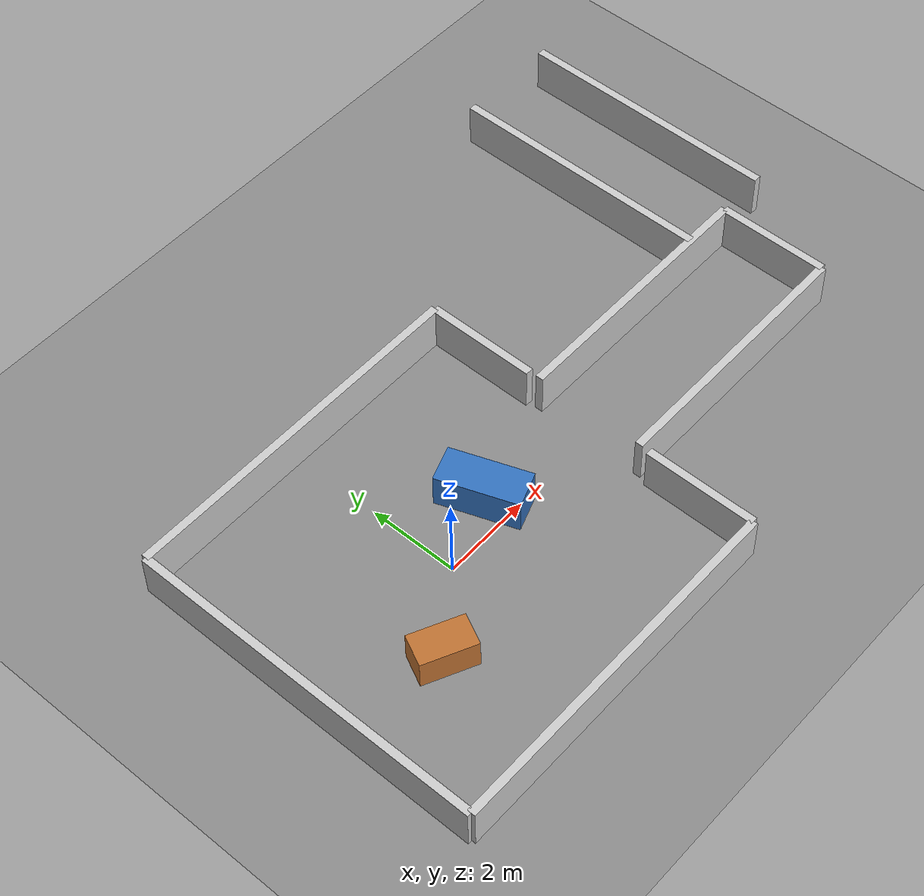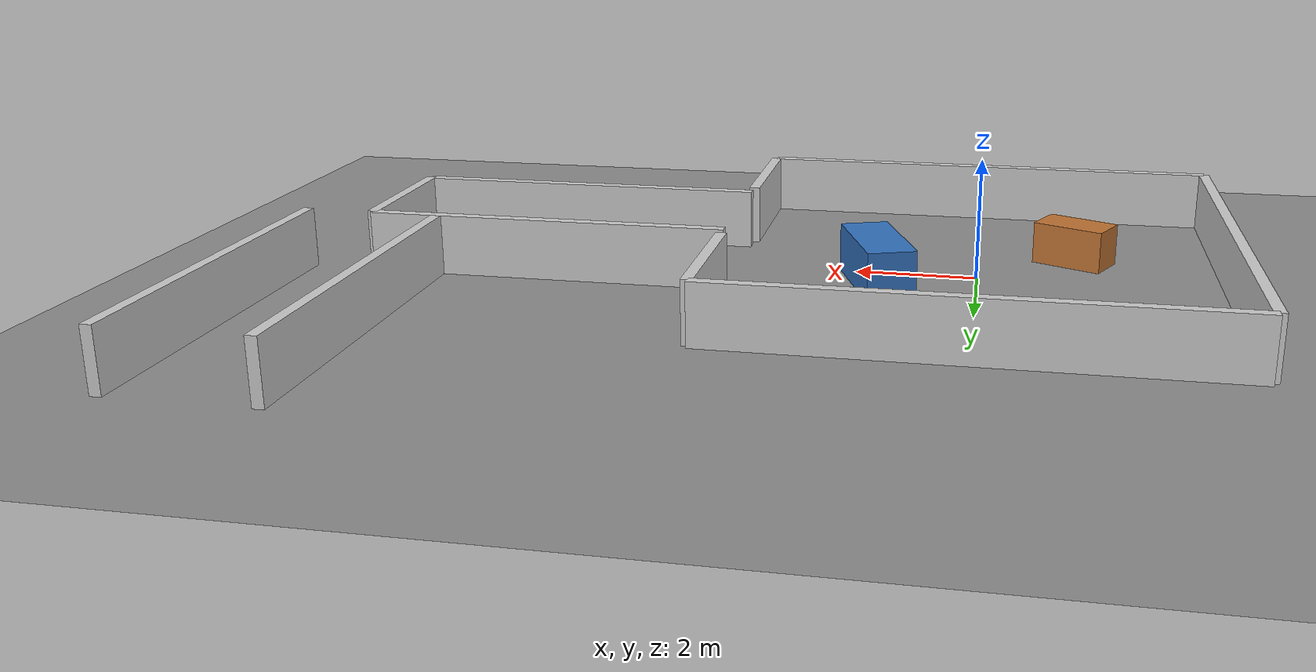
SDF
<?xml version="1.0" ?>
<sdf version="1.7">
  <world name="default">
    <physics type="ode">
      <max_step_size>0.01</max_step_size>
      <real_time_factor>1.0</real_time_factor>
    </physics>

    <light type="directional" name="sun">
      <cast_shadows>true</cast_shadows>
      <pose>0 0 10 0 0 0</pose>
      <diffuse>0.8 0.8 0.8 1</diffuse>
      <specular>0.2 0.2 0.2 1</specular>
      <direction>-0.5 0.1 -0.9</direction>
    </light>

    <model name="ground_plane">
      <static>true</static>
      <link name="link">
        <collision name="collision">
          <geometry>
            <plane>
              <normal>0 0 1</normal>
              <size>20 20</size>
            </plane>
          </geometry>
        </collision>
        <visual name="visual">
          <geometry>
            <plane>
              <normal>0 0 1</normal>
              <size>20 20</size>
            </plane>
          </geometry>
          <material>
            <ambient>0.55 0.55 0.55 1</ambient>
            <diffuse>0.55 0.55 0.55 1</diffuse>
          </material>
        </visual>
      </link>
    </model>

    <model name="north_wall">
      <static>true</static>
      <pose>0 4 0.5 0 0 0</pose>
      <link name="link">
        <collision name="collision">
          <geometry><box><size>8 0.18 1.0</size></box></geometry>
        </collision>
        <visual name="visual">
          <geometry><box><size>8 0.18 1.0</size></box></geometry>
          <material><ambient>0.8 0.8 0.8 1</ambient><diffuse>0.8 0.8 0.8 1</diffuse></material>
        </visual>
      </link>
    </model>

    <model name="south_wall">
      <static>true</static>
      <pose>0 -4 0.5 0 0 0</pose>
      <link name="link">
        <collision name="collision">
          <geometry><box><size>8 0.18 1.0</size></box></geometry>
        </collision>
        <visual name="visual">
          <geometry><box><size>8 0.18 1.0</size></box></geometry>
          <material><ambient>0.8 0.8 0.8 1</ambient><diffuse>0.8 0.8 0.8 1</diffuse></material>
        </visual>
      </link>
    </model>

    <model name="west_wall">
      <static>true</static>
      <pose>-4 0 0.5 0 0 0</pose>
      <link name="link">
        <collision name="collision">
          <geometry><box><size>0.18 8 1.0</size></box></geometry>
        </collision>
        <visual name="visual">
          <geometry><box><size>0.18 8 1.0</size></box></geometry>
          <material><ambient>0.8 0.8 0.8 1</ambient><diffuse>0.8 0.8 0.8 1</diffuse></material>
        </visual>
      </link>
    </model>

    <model name="east_wall_upper">
      <static>true</static>
      <pose>4 2.75 0.5 0 0 0</pose>
      <link name="link">
        <collision name="collision">
          <geometry><box><size>0.18 2.5 1.0</size></box></geometry>
        </collision>
        <visual name="visual">
          <geometry><box><size>0.18 2.5 1.0</size></box></geometry>
          <material><ambient>0.8 0.8 0.8 1</ambient><diffuse>0.8 0.8 0.8 1</diffuse></material>
        </visual>
      </link>
    </model>

    <model name="east_wall_lower">
      <static>true</static>
      <pose>4 -2.75 0.5 0 0 0</pose>
      <link name="link">
        <collision name="collision">
          <geometry><box><size>0.18 2.5 1.0</size></box></geometry>
        </collision>
        <visual name="visual">
          <geometry><box><size>0.18 2.5 1.0</size></box></geometry>
          <material><ambient>0.8 0.8 0.8 1</ambient><diffuse>0.8 0.8 0.8 1</diffuse></material>
        </visual>
      </link>
    </model>

    <model name="corridor_north_wall">
      <static>true</static>
      <pose>7 1.25 0.5 0 0 0</pose>
      <link name="link">
        <collision name="collision">
          <geometry><box><size>6 0.18 1.0</size></box></geometry>
        </collision>
        <visual name="visual">
          <geometry><box><size>6 0.18 1.0</size></box></geometry>
          <material><ambient>0.8 0.8 0.8 1</ambient><diffuse>0.8 0.8 0.8 1</diffuse></material>
        </visual>
      </link>
    </model>

    <model name="corridor_south_wall">
      <static>true</static>
      <pose>7 -1.25 0.5 0 0 0</pose>
      <link name="link">
        <collision name="collision">
          <geometry><box><size>6 0.18 1.0</size></box></geometry>
        </collision>
        <visual name="visual">
          <geometry><box><size>6 0.18 1.0</size></box></geometry>
          <material><ambient>0.8 0.8 0.8 1</ambient><diffuse>0.8 0.8 0.8 1</diffuse></material>
        </visual>
      </link>
    </model>

    <model name="turn_blocker">
      <static>true</static>
      <pose>10 0 0.5 0 0 0</pose>
      <link name="link">
        <collision name="collision">
          <geometry><box><size>0.18 2.5 1.0</size></box></geometry>
        </collision>
        <visual name="visual">
          <geometry><box><size>0.18 2.5 1.0</size></box></geometry>
          <material><ambient>0.8 0.8 0.8 1</ambient><diffuse>0.8 0.8 0.8 1</diffuse></material>
        </visual>
      </link>
    </model>

    <model name="north_branch_west_wall">
      <static>true</static>
      <pose>8.85 4.25 0.5 0 0 0</pose>
      <link name="link">
        <collision name="collision">
          <geometry><box><size>0.18 6 1.0</size></box></geometry>
        </collision>
        <visual name="visual">
          <geometry><box><size>0.18 6 1.0</size></box></geometry>
          <material><ambient>0.8 0.8 0.8 1</ambient><diffuse>0.8 0.8 0.8 1</diffuse></material>
        </visual>
      </link>
    </model>

    <model name="north_branch_east_wall">
      <static>true</static>
      <pose>11.15 4.25 0.5 0 0 0</pose>
      <link name="link">
        <collision name="collision">
          <geometry><box><size>0.18 6 1.0</size></box></geometry>
        </collision>
        <visual name="visual">
          <geometry><box><size>0.18 6 1.0</size></box></geometry>
          <material><ambient>0.8 0.8 0.8 1</ambient><diffuse>0.8 0.8 0.8 1</diffuse></material>
        </visual>
      </link>
    </model>

    <model name="center_obstacle">
      <static>true</static>
      <pose>1.6 0.6 0.4 0 0 0.35</pose>
      <link name="link">
        <collision name="collision">
          <geometry><box><size>0.8 1.8 0.8</size></box></geometry>
        </collision>
        <visual name="visual">
          <geometry><box><size>0.8 1.8 0.8</size></box></geometry>
          <material><ambient>0.2 0.45 0.75 1</ambient><diffuse>0.2 0.45 0.75 1</diffuse></material>
        </visual>
      </link>
    </model>

    <model name="side_obstacle">
      <static>true</static>
      <pose>-1.6 -1.2 0.35 0 0 -0.45</pose>
      <link name="link">
        <collision name="collision">
          <geometry><box><size>1.2 0.7 0.7</size></box></geometry>
        </collision>
        <visual name="visual">
          <geometry><box><size>1.2 0.7 0.7</size></box></geometry>
          <material><ambient>0.75 0.45 0.2 1</ambient><diffuse>0.75 0.45 0.2 1</diffuse></material>
        </visual>
      </link>
    </model>
  </world>
</sdf>
